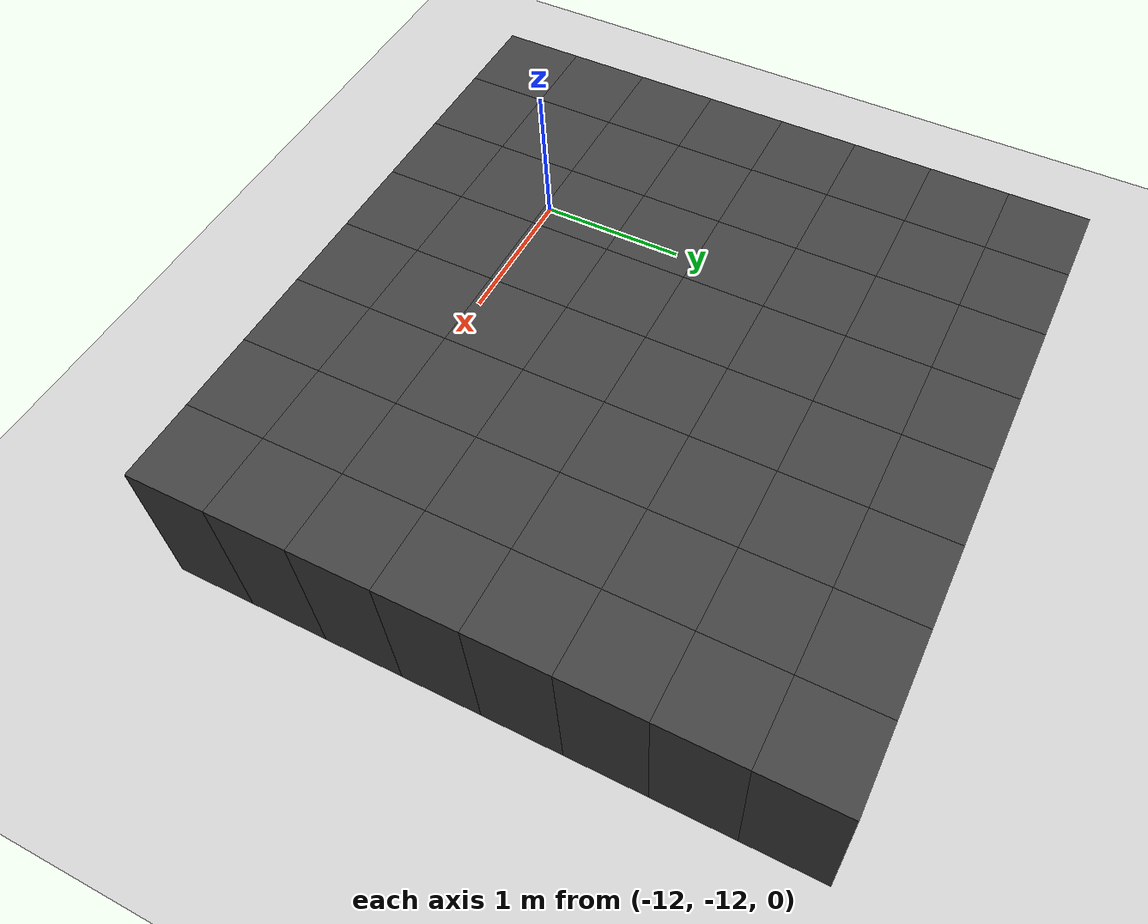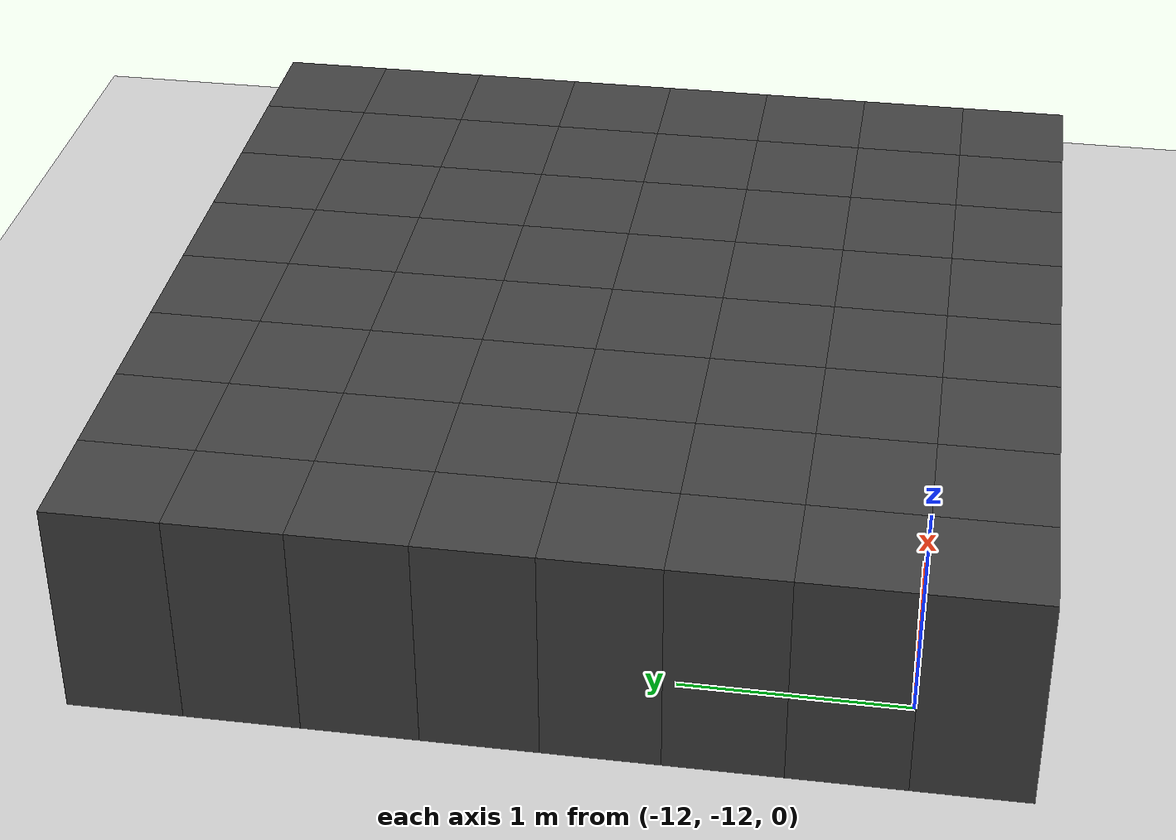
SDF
<sdf version="1.7">
 <world name="map_14735">
  <model name="ground_plane">
   <static>true</static>
   <link name="link">
    <collision name="collision">
     <geometry><plane><normal>0 0 1</normal><size>200 200</size></plane></geometry>
    </collision>
    <visual name="visual">
     <geometry><plane><normal>0 0 1</normal><size>200 200</size></plane></geometry>
     <material><ambient>0.8 0.8 0.8 1</ambient><diffuse>0.8 0.8 0.8 1</diffuse></material>
    </visual>
   </link>
  </model>
  <model name="maze_environment">
   <static>true</static>
   <link name="wall_1421">
    <pose>-12.250 -8.750 0.500 0 0 0</pose>
    <collision name="col"><geometry><box><size>0.5 0.5 1.0</size></box></geometry></collision>
    <visual name="vis">
     <geometry><box><size>0.5 0.5 1.0</size></box></geometry>
     <material><ambient>0.15 0.15 0.15 1</ambient><diffuse>0.25 0.25 0.25 1</diffuse></material>
    </visual>
   </link>
   <link name="wall_1422">
    <pose>-11.750 -8.750 0.500 0 0 0</pose>
    <collision name="col"><geometry><box><size>0.5 0.5 1.0</size></box></geometry></collision>
    <visual name="vis">
     <geometry><box><size>0.5 0.5 1.0</size></box></geometry>
     <material><ambient>0.15 0.15 0.15 1</ambient><diffuse>0.25 0.25 0.25 1</diffuse></material>
    </visual>
   </link>
   <link name="wall_1423">
    <pose>-11.250 -8.750 0.500 0 0 0</pose>
    <collision name="col"><geometry><box><size>0.5 0.5 1.0</size></box></geometry></collision>
    <visual name="vis">
     <geometry><box><size>0.5 0.5 1.0</size></box></geometry>
     <material><ambient>0.15 0.15 0.15 1</ambient><diffuse>0.25 0.25 0.25 1</diffuse></material>
    </visual>
   </link>
   <link name="wall_1424">
    <pose>-10.750 -8.750 0.500 0 0 0</pose>
    <collision name="col"><geometry><box><size>0.5 0.5 1.0</size></box></geometry></collision>
    <visual name="vis">
     <geometry><box><size>0.5 0.5 1.0</size></box></geometry>
     <material><ambient>0.15 0.15 0.15 1</ambient><diffuse>0.25 0.25 0.25 1</diffuse></material>
    </visual>
   </link>
   <link name="wall_1425">
    <pose>-10.250 -8.750 0.500 0 0 0</pose>
    <collision name="col"><geometry><box><size>0.5 0.5 1.0</size></box></geometry></collision>
    <visual name="vis">
     <geometry><box><size>0.5 0.5 1.0</size></box></geometry>
     <material><ambient>0.15 0.15 0.15 1</ambient><diffuse>0.25 0.25 0.25 1</diffuse></material>
    </visual>
   </link>
   <link name="wall_1426">
    <pose>-9.750 -8.750 0.500 0 0 0</pose>
    <collision name="col"><geometry><box><size>0.5 0.5 1.0</size></box></geometry></collision>
    <visual name="vis">
     <geometry><box><size>0.5 0.5 1.0</size></box></geometry>
     <material><ambient>0.15 0.15 0.15 1</ambient><diffuse>0.25 0.25 0.25 1</diffuse></material>
    </visual>
   </link>
   <link name="wall_1427">
    <pose>-9.250 -8.750 0.500 0 0 0</pose>
    <collision name="col"><geometry><box><size>0.5 0.5 1.0</size></box></geometry></collision>
    <visual name="vis">
     <geometry><box><size>0.5 0.5 1.0</size></box></geometry>
     <material><ambient>0.15 0.15 0.15 1</ambient><diffuse>0.25 0.25 0.25 1</diffuse></material>
    </visual>
   </link>
   <link name="wall_1428">
    <pose>-8.750 -8.750 0.500 0 0 0</pose>
    <collision name="col"><geometry><box><size>0.5 0.5 1.0</size></box></geometry></collision>
    <visual name="vis">
     <geometry><box><size>0.5 0.5 1.0</size></box></geometry>
     <material><ambient>0.15 0.15 0.15 1</ambient><diffuse>0.25 0.25 0.25 1</diffuse></material>
    </visual>
   </link>
   <link name="wall_1463">
    <pose>-12.250 -9.250 0.500 0 0 0</pose>
    <collision name="col"><geometry><box><size>0.5 0.5 1.0</size></box></geometry></collision>
    <visual name="vis">
     <geometry><box><size>0.5 0.5 1.0</size></box></geometry>
     <material><ambient>0.15 0.15 0.15 1</ambient><diffuse>0.25 0.25 0.25 1</diffuse></material>
    </visual>
   </link>
   <link name="wall_1464">
    <pose>-11.750 -9.250 0.500 0 0 0</pose>
    <collision name="col"><geometry><box><size>0.5 0.5 1.0</size></box></geometry></collision>
    <visual name="vis">
     <geometry><box><size>0.5 0.5 1.0</size></box></geometry>
     <material><ambient>0.15 0.15 0.15 1</ambient><diffuse>0.25 0.25 0.25 1</diffuse></material>
    </visual>
   </link>
   <link name="wall_1465">
    <pose>-11.250 -9.250 0.500 0 0 0</pose>
    <collision name="col"><geometry><box><size>0.5 0.5 1.0</size></box></geometry></collision>
    <visual name="vis">
     <geometry><box><size>0.5 0.5 1.0</size></box></geometry>
     <material><ambient>0.15 0.15 0.15 1</ambient><diffuse>0.25 0.25 0.25 1</diffuse></material>
    </visual>
   </link>
   <link name="wall_1466">
    <pose>-10.750 -9.250 0.500 0 0 0</pose>
    <collision name="col"><geometry><box><size>0.5 0.5 1.0</size></box></geometry></collision>
    <visual name="vis">
     <geometry><box><size>0.5 0.5 1.0</size></box></geometry>
     <material><ambient>0.15 0.15 0.15 1</ambient><diffuse>0.25 0.25 0.25 1</diffuse></material>
    </visual>
   </link>
   <link name="wall_1467">
    <pose>-10.250 -9.250 0.500 0 0 0</pose>
    <collision name="col"><geometry><box><size>0.5 0.5 1.0</size></box></geometry></collision>
    <visual name="vis">
     <geometry><box><size>0.5 0.5 1.0</size></box></geometry>
     <material><ambient>0.15 0.15 0.15 1</ambient><diffuse>0.25 0.25 0.25 1</diffuse></material>
    </visual>
   </link>
   <link name="wall_1468">
    <pose>-9.750 -9.250 0.500 0 0 0</pose>
    <collision name="col"><geometry><box><size>0.5 0.5 1.0</size></box></geometry></collision>
    <visual name="vis">
     <geometry><box><size>0.5 0.5 1.0</size></box></geometry>
     <material><ambient>0.15 0.15 0.15 1</ambient><diffuse>0.25 0.25 0.25 1</diffuse></material>
    </visual>
   </link>
   <link name="wall_1469">
    <pose>-9.250 -9.250 0.500 0 0 0</pose>
    <collision name="col"><geometry><box><size>0.5 0.5 1.0</size></box></geometry></collision>
    <visual name="vis">
     <geometry><box><size>0.5 0.5 1.0</size></box></geometry>
     <material><ambient>0.15 0.15 0.15 1</ambient><diffuse>0.25 0.25 0.25 1</diffuse></material>
    </visual>
   </link>
   <link name="wall_1470">
    <pose>-8.750 -9.250 0.500 0 0 0</pose>
    <collision name="col"><geometry><box><size>0.5 0.5 1.0</size></box></geometry></collision>
    <visual name="vis">
     <geometry><box><size>0.5 0.5 1.0</size></box></geometry>
     <material><ambient>0.15 0.15 0.15 1</ambient><diffuse>0.25 0.25 0.25 1</diffuse></material>
    </visual>
   </link>
   <link name="wall_1505">
    <pose>-12.250 -9.750 0.500 0 0 0</pose>
    <collision name="col"><geometry><box><size>0.5 0.5 1.0</size></box></geometry></collision>
    <visual name="vis">
     <geometry><box><size>0.5 0.5 1.0</size></box></geometry>
     <material><ambient>0.15 0.15 0.15 1</ambient><diffuse>0.25 0.25 0.25 1</diffuse></material>
    </visual>
   </link>
   <link name="wall_1506">
    <pose>-11.750 -9.750 0.500 0 0 0</pose>
    <collision name="col"><geometry><box><size>0.5 0.5 1.0</size></box></geometry></collision>
    <visual name="vis">
     <geometry><box><size>0.5 0.5 1.0</size></box></geometry>
     <material><ambient>0.15 0.15 0.15 1</ambient><diffuse>0.25 0.25 0.25 1</diffuse></material>
    </visual>
   </link>
   <link name="wall_1507">
    <pose>-11.250 -9.750 0.500 0 0 0</pose>
    <collision name="col"><geometry><box><size>0.5 0.5 1.0</size></box></geometry></collision>
    <visual name="vis">
     <geometry><box><size>0.5 0.5 1.0</size></box></geometry>
     <material><ambient>0.15 0.15 0.15 1</ambient><diffuse>0.25 0.25 0.25 1</diffuse></material>
    </visual>
   </link>
   <link name="wall_1508">
    <pose>-10.750 -9.750 0.500 0 0 0</pose>
    <collision name="col"><geometry><box><size>0.5 0.5 1.0</size></box></geometry></collision>
    <visual name="vis">
     <geometry><box><size>0.5 0.5 1.0</size></box></geometry>
     <material><ambient>0.15 0.15 0.15 1</ambient><diffuse>0.25 0.25 0.25 1</diffuse></material>
    </visual>
   </link>
   <link name="wall_1509">
    <pose>-10.250 -9.750 0.500 0 0 0</pose>
    <collision name="col"><geometry><box><size>0.5 0.5 1.0</size></box></geometry></collision>
    <visual name="vis">
     <geometry><box><size>0.5 0.5 1.0</size></box></geometry>
     <material><ambient>0.15 0.15 0.15 1</ambient><diffuse>0.25 0.25 0.25 1</diffuse></material>
    </visual>
   </link>
   <link name="wall_1510">
    <pose>-9.750 -9.750 0.500 0 0 0</pose>
    <collision name="col"><geometry><box><size>0.5 0.5 1.0</size></box></geometry></collision>
    <visual name="vis">
     <geometry><box><size>0.5 0.5 1.0</size></box></geometry>
     <material><ambient>0.15 0.15 0.15 1</ambient><diffuse>0.25 0.25 0.25 1</diffuse></material>
    </visual>
   </link>
   <link name="wall_1511">
    <pose>-9.250 -9.750 0.500 0 0 0</pose>
    <collision name="col"><geometry><box><size>0.5 0.5 1.0</size></box></geometry></collision>
    <visual name="vis">
     <geometry><box><size>0.5 0.5 1.0</size></box></geometry>
     <material><ambient>0.15 0.15 0.15 1</ambient><diffuse>0.25 0.25 0.25 1</diffuse></material>
    </visual>
   </link>
   <link name="wall_1512">
    <pose>-8.750 -9.750 0.500 0 0 0</pose>
    <collision name="col"><geometry><box><size>0.5 0.5 1.0</size></box></geometry></collision>
    <visual name="vis">
     <geometry><box><size>0.5 0.5 1.0</size></box></geometry>
     <material><ambient>0.15 0.15 0.15 1</ambient><diffuse>0.25 0.25 0.25 1</diffuse></material>
    </visual>
   </link>
   <link name="wall_1554">
    <pose>-12.250 -10.250 0.500 0 0 0</pose>
    <collision name="col"><geometry><box><size>0.5 0.5 1.0</size></box></geometry></collision>
    <visual name="vis">
     <geometry><box><size>0.5 0.5 1.0</size></box></geometry>
     <material><ambient>0.15 0.15 0.15 1</ambient><diffuse>0.25 0.25 0.25 1</diffuse></material>
    </visual>
   </link>
   <link name="wall_1555">
    <pose>-11.750 -10.250 0.500 0 0 0</pose>
    <collision name="col"><geometry><box><size>0.5 0.5 1.0</size></box></geometry></collision>
    <visual name="vis">
     <geometry><box><size>0.5 0.5 1.0</size></box></geometry>
     <material><ambient>0.15 0.15 0.15 1</ambient><diffuse>0.25 0.25 0.25 1</diffuse></material>
    </visual>
   </link>
   <link name="wall_1556">
    <pose>-11.250 -10.250 0.500 0 0 0</pose>
    <collision name="col"><geometry><box><size>0.5 0.5 1.0</size></box></geometry></collision>
    <visual name="vis">
     <geometry><box><size>0.5 0.5 1.0</size></box></geometry>
     <material><ambient>0.15 0.15 0.15 1</ambient><diffuse>0.25 0.25 0.25 1</diffuse></material>
    </visual>
   </link>
   <link name="wall_1557">
    <pose>-10.750 -10.250 0.500 0 0 0</pose>
    <collision name="col"><geometry><box><size>0.5 0.5 1.0</size></box></geometry></collision>
    <visual name="vis">
     <geometry><box><size>0.5 0.5 1.0</size></box></geometry>
     <material><ambient>0.15 0.15 0.15 1</ambient><diffuse>0.25 0.25 0.25 1</diffuse></material>
    </visual>
   </link>
   <link name="wall_1558">
    <pose>-10.250 -10.250 0.500 0 0 0</pose>
    <collision name="col"><geometry><box><size>0.5 0.5 1.0</size></box></geometry></collision>
    <visual name="vis">
     <geometry><box><size>0.5 0.5 1.0</size></box></geometry>
     <material><ambient>0.15 0.15 0.15 1</ambient><diffuse>0.25 0.25 0.25 1</diffuse></material>
    </visual>
   </link>
   <link name="wall_1559">
    <pose>-9.750 -10.250 0.500 0 0 0</pose>
    <collision name="col"><geometry><box><size>0.5 0.5 1.0</size></box></geometry></collision>
    <visual name="vis">
     <geometry><box><size>0.5 0.5 1.0</size></box></geometry>
     <material><ambient>0.15 0.15 0.15 1</ambient><diffuse>0.25 0.25 0.25 1</diffuse></material>
    </visual>
   </link>
   <link name="wall_1560">
    <pose>-9.250 -10.250 0.500 0 0 0</pose>
    <collision name="col"><geometry><box><size>0.5 0.5 1.0</size></box></geometry></collision>
    <visual name="vis">
     <geometry><box><size>0.5 0.5 1.0</size></box></geometry>
     <material><ambient>0.15 0.15 0.15 1</ambient><diffuse>0.25 0.25 0.25 1</diffuse></material>
    </visual>
   </link>
   <link name="wall_1561">
    <pose>-8.750 -10.250 0.500 0 0 0</pose>
    <collision name="col"><geometry><box><size>0.5 0.5 1.0</size></box></geometry></collision>
    <visual name="vis">
     <geometry><box><size>0.5 0.5 1.0</size></box></geometry>
     <material><ambient>0.15 0.15 0.15 1</ambient><diffuse>0.25 0.25 0.25 1</diffuse></material>
    </visual>
   </link>
   <link name="wall_1603">
    <pose>-12.250 -10.750 0.500 0 0 0</pose>
    <collision name="col"><geometry><box><size>0.5 0.5 1.0</size></box></geometry></collision>
    <visual name="vis">
     <geometry><box><size>0.5 0.5 1.0</size></box></geometry>
     <material><ambient>0.15 0.15 0.15 1</ambient><diffuse>0.25 0.25 0.25 1</diffuse></material>
    </visual>
   </link>
   <link name="wall_1604">
    <pose>-11.750 -10.750 0.500 0 0 0</pose>
    <collision name="col"><geometry><box><size>0.5 0.5 1.0</size></box></geometry></collision>
    <visual name="vis">
     <geometry><box><size>0.5 0.5 1.0</size></box></geometry>
     <material><ambient>0.15 0.15 0.15 1</ambient><diffuse>0.25 0.25 0.25 1</diffuse></material>
    </visual>
   </link>
   <link name="wall_1605">
    <pose>-11.250 -10.750 0.500 0 0 0</pose>
    <collision name="col"><geometry><box><size>0.5 0.5 1.0</size></box></geometry></collision>
    <visual name="vis">
     <geometry><box><size>0.5 0.5 1.0</size></box></geometry>
     <material><ambient>0.15 0.15 0.15 1</ambient><diffuse>0.25 0.25 0.25 1</diffuse></material>
    </visual>
   </link>
   <link name="wall_1606">
    <pose>-10.750 -10.750 0.500 0 0 0</pose>
    <collision name="col"><geometry><box><size>0.5 0.5 1.0</size></box></geometry></collision>
    <visual name="vis">
     <geometry><box><size>0.5 0.5 1.0</size></box></geometry>
     <material><ambient>0.15 0.15 0.15 1</ambient><diffuse>0.25 0.25 0.25 1</diffuse></material>
    </visual>
   </link>
   <link name="wall_1607">
    <pose>-10.250 -10.750 0.500 0 0 0</pose>
    <collision name="col"><geometry><box><size>0.5 0.5 1.0</size></box></geometry></collision>
    <visual name="vis">
     <geometry><box><size>0.5 0.5 1.0</size></box></geometry>
     <material><ambient>0.15 0.15 0.15 1</ambient><diffuse>0.25 0.25 0.25 1</diffuse></material>
    </visual>
   </link>
   <link name="wall_1608">
    <pose>-9.750 -10.750 0.500 0 0 0</pose>
    <collision name="col"><geometry><box><size>0.5 0.5 1.0</size></box></geometry></collision>
    <visual name="vis">
     <geometry><box><size>0.5 0.5 1.0</size></box></geometry>
     <material><ambient>0.15 0.15 0.15 1</ambient><diffuse>0.25 0.25 0.25 1</diffuse></material>
    </visual>
   </link>
   <link name="wall_1609">
    <pose>-9.250 -10.750 0.500 0 0 0</pose>
    <collision name="col"><geometry><box><size>0.5 0.5 1.0</size></box></geometry></collision>
    <visual name="vis">
     <geometry><box><size>0.5 0.5 1.0</size></box></geometry>
     <material><ambient>0.15 0.15 0.15 1</ambient><diffuse>0.25 0.25 0.25 1</diffuse></material>
    </visual>
   </link>
   <link name="wall_1610">
    <pose>-8.750 -10.750 0.500 0 0 0</pose>
    <collision name="col"><geometry><box><size>0.5 0.5 1.0</size></box></geometry></collision>
    <visual name="vis">
     <geometry><box><size>0.5 0.5 1.0</size></box></geometry>
     <material><ambient>0.15 0.15 0.15 1</ambient><diffuse>0.25 0.25 0.25 1</diffuse></material>
    </visual>
   </link>
   <link name="wall_1649">
    <pose>-12.250 -11.250 0.500 0 0 0</pose>
    <collision name="col"><geometry><box><size>0.5 0.5 1.0</size></box></geometry></collision>
    <visual name="vis">
     <geometry><box><size>0.5 0.5 1.0</size></box></geometry>
     <material><ambient>0.15 0.15 0.15 1</ambient><diffuse>0.25 0.25 0.25 1</diffuse></material>
    </visual>
   </link>
   <link name="wall_1650">
    <pose>-11.750 -11.250 0.500 0 0 0</pose>
    <collision name="col"><geometry><box><size>0.5 0.5 1.0</size></box></geometry></collision>
    <visual name="vis">
     <geometry><box><size>0.5 0.5 1.0</size></box></geometry>
     <material><ambient>0.15 0.15 0.15 1</ambient><diffuse>0.25 0.25 0.25 1</diffuse></material>
    </visual>
   </link>
   <link name="wall_1651">
    <pose>-11.250 -11.250 0.500 0 0 0</pose>
    <collision name="col"><geometry><box><size>0.5 0.5 1.0</size></box></geometry></collision>
    <visual name="vis">
     <geometry><box><size>0.5 0.5 1.0</size></box></geometry>
     <material><ambient>0.15 0.15 0.15 1</ambient><diffuse>0.25 0.25 0.25 1</diffuse></material>
    </visual>
   </link>
   <link name="wall_1652">
    <pose>-10.750 -11.250 0.500 0 0 0</pose>
    <collision name="col"><geometry><box><size>0.5 0.5 1.0</size></box></geometry></collision>
    <visual name="vis">
     <geometry><box><size>0.5 0.5 1.0</size></box></geometry>
     <material><ambient>0.15 0.15 0.15 1</ambient><diffuse>0.25 0.25 0.25 1</diffuse></material>
    </visual>
   </link>
   <link name="wall_1653">
    <pose>-10.250 -11.250 0.500 0 0 0</pose>
    <collision name="col"><geometry><box><size>0.5 0.5 1.0</size></box></geometry></collision>
    <visual name="vis">
     <geometry><box><size>0.5 0.5 1.0</size></box></geometry>
     <material><ambient>0.15 0.15 0.15 1</ambient><diffuse>0.25 0.25 0.25 1</diffuse></material>
    </visual>
   </link>
   <link name="wall_1654">
    <pose>-9.750 -11.250 0.500 0 0 0</pose>
    <collision name="col"><geometry><box><size>0.5 0.5 1.0</size></box></geometry></collision>
    <visual name="vis">
     <geometry><box><size>0.5 0.5 1.0</size></box></geometry>
     <material><ambient>0.15 0.15 0.15 1</ambient><diffuse>0.25 0.25 0.25 1</diffuse></material>
    </visual>
   </link>
   <link name="wall_1655">
    <pose>-9.250 -11.250 0.500 0 0 0</pose>
    <collision name="col"><geometry><box><size>0.5 0.5 1.0</size></box></geometry></collision>
    <visual name="vis">
     <geometry><box><size>0.5 0.5 1.0</size></box></geometry>
     <material><ambient>0.15 0.15 0.15 1</ambient><diffuse>0.25 0.25 0.25 1</diffuse></material>
    </visual>
   </link>
   <link name="wall_1656">
    <pose>-8.750 -11.250 0.500 0 0 0</pose>
    <collision name="col"><geometry><box><size>0.5 0.5 1.0</size></box></geometry></collision>
    <visual name="vis">
     <geometry><box><size>0.5 0.5 1.0</size></box></geometry>
     <material><ambient>0.15 0.15 0.15 1</ambient><diffuse>0.25 0.25 0.25 1</diffuse></material>
    </visual>
   </link>
   <link name="wall_1694">
    <pose>-12.250 -11.750 0.500 0 0 0</pose>
    <collision name="col"><geometry><box><size>0.5 0.5 1.0</size></box></geometry></collision>
    <visual name="vis">
     <geometry><box><size>0.5 0.5 1.0</size></box></geometry>
     <material><ambient>0.15 0.15 0.15 1</ambient><diffuse>0.25 0.25 0.25 1</diffuse></material>
    </visual>
   </link>
   <link name="wall_1695">
    <pose>-11.750 -11.750 0.500 0 0 0</pose>
    <collision name="col"><geometry><box><size>0.5 0.5 1.0</size></box></geometry></collision>
    <visual name="vis">
     <geometry><box><size>0.5 0.5 1.0</size></box></geometry>
     <material><ambient>0.15 0.15 0.15 1</ambient><diffuse>0.25 0.25 0.25 1</diffuse></material>
    </visual>
   </link>
   <link name="wall_1696">
    <pose>-11.250 -11.750 0.500 0 0 0</pose>
    <collision name="col"><geometry><box><size>0.5 0.5 1.0</size></box></geometry></collision>
    <visual name="vis">
     <geometry><box><size>0.5 0.5 1.0</size></box></geometry>
     <material><ambient>0.15 0.15 0.15 1</ambient><diffuse>0.25 0.25 0.25 1</diffuse></material>
    </visual>
   </link>
   <link name="wall_1697">
    <pose>-10.750 -11.750 0.500 0 0 0</pose>
    <collision name="col"><geometry><box><size>0.5 0.5 1.0</size></box></geometry></collision>
    <visual name="vis">
     <geometry><box><size>0.5 0.5 1.0</size></box></geometry>
     <material><ambient>0.15 0.15 0.15 1</ambient><diffuse>0.25 0.25 0.25 1</diffuse></material>
    </visual>
   </link>
   <link name="wall_1698">
    <pose>-10.250 -11.750 0.500 0 0 0</pose>
    <collision name="col"><geometry><box><size>0.5 0.5 1.0</size></box></geometry></collision>
    <visual name="vis">
     <geometry><box><size>0.5 0.5 1.0</size></box></geometry>
     <material><ambient>0.15 0.15 0.15 1</ambient><diffuse>0.25 0.25 0.25 1</diffuse></material>
    </visual>
   </link>
   <link name="wall_1699">
    <pose>-9.750 -11.750 0.500 0 0 0</pose>
    <collision name="col"><geometry><box><size>0.5 0.5 1.0</size></box></geometry></collision>
    <visual name="vis">
     <geometry><box><size>0.5 0.5 1.0</size></box></geometry>
     <material><ambient>0.15 0.15 0.15 1</ambient><diffuse>0.25 0.25 0.25 1</diffuse></material>
    </visual>
   </link>
   <link name="wall_1700">
    <pose>-9.250 -11.750 0.500 0 0 0</pose>
    <collision name="col"><geometry><box><size>0.5 0.5 1.0</size></box></geometry></collision>
    <visual name="vis">
     <geometry><box><size>0.5 0.5 1.0</size></box></geometry>
     <material><ambient>0.15 0.15 0.15 1</ambient><diffuse>0.25 0.25 0.25 1</diffuse></material>
    </visual>
   </link>
   <link name="wall_1701">
    <pose>-8.750 -11.750 0.500 0 0 0</pose>
    <collision name="col"><geometry><box><size>0.5 0.5 1.0</size></box></geometry></collision>
    <visual name="vis">
     <geometry><box><size>0.5 0.5 1.0</size></box></geometry>
     <material><ambient>0.15 0.15 0.15 1</ambient><diffuse>0.25 0.25 0.25 1</diffuse></material>
    </visual>
   </link>
   <link name="wall_1741">
    <pose>-12.250 -12.250 0.500 0 0 0</pose>
    <collision name="col"><geometry><box><size>0.5 0.5 1.0</size></box></geometry></collision>
    <visual name="vis">
     <geometry><box><size>0.5 0.5 1.0</size></box></geometry>
     <material><ambient>0.15 0.15 0.15 1</ambient><diffuse>0.25 0.25 0.25 1</diffuse></material>
    </visual>
   </link>
   <link name="wall_1742">
    <pose>-11.750 -12.250 0.500 0 0 0</pose>
    <collision name="col"><geometry><box><size>0.5 0.5 1.0</size></box></geometry></collision>
    <visual name="vis">
     <geometry><box><size>0.5 0.5 1.0</size></box></geometry>
     <material><ambient>0.15 0.15 0.15 1</ambient><diffuse>0.25 0.25 0.25 1</diffuse></material>
    </visual>
   </link>
   <link name="wall_1743">
    <pose>-11.250 -12.250 0.500 0 0 0</pose>
    <collision name="col"><geometry><box><size>0.5 0.5 1.0</size></box></geometry></collision>
    <visual name="vis">
     <geometry><box><size>0.5 0.5 1.0</size></box></geometry>
     <material><ambient>0.15 0.15 0.15 1</ambient><diffuse>0.25 0.25 0.25 1</diffuse></material>
    </visual>
   </link>
   <link name="wall_1744">
    <pose>-10.750 -12.250 0.500 0 0 0</pose>
    <collision name="col"><geometry><box><size>0.5 0.5 1.0</size></box></geometry></collision>
    <visual name="vis">
     <geometry><box><size>0.5 0.5 1.0</size></box></geometry>
     <material><ambient>0.15 0.15 0.15 1</ambient><diffuse>0.25 0.25 0.25 1</diffuse></material>
    </visual>
   </link>
   <link name="wall_1745">
    <pose>-10.250 -12.250 0.500 0 0 0</pose>
    <collision name="col"><geometry><box><size>0.5 0.5 1.0</size></box></geometry></collision>
    <visual name="vis">
     <geometry><box><size>0.5 0.5 1.0</size></box></geometry>
     <material><ambient>0.15 0.15 0.15 1</ambient><diffuse>0.25 0.25 0.25 1</diffuse></material>
    </visual>
   </link>
   <link name="wall_1746">
    <pose>-9.750 -12.250 0.500 0 0 0</pose>
    <collision name="col"><geometry><box><size>0.5 0.5 1.0</size></box></geometry></collision>
    <visual name="vis">
     <geometry><box><size>0.5 0.5 1.0</size></box></geometry>
     <material><ambient>0.15 0.15 0.15 1</ambient><diffuse>0.25 0.25 0.25 1</diffuse></material>
    </visual>
   </link>
   <link name="wall_1747">
    <pose>-9.250 -12.250 0.500 0 0 0</pose>
    <collision name="col"><geometry><box><size>0.5 0.5 1.0</size></box></geometry></collision>
    <visual name="vis">
     <geometry><box><size>0.5 0.5 1.0</size></box></geometry>
     <material><ambient>0.15 0.15 0.15 1</ambient><diffuse>0.25 0.25 0.25 1</diffuse></material>
    </visual>
   </link>
   <link name="wall_1748">
    <pose>-8.750 -12.250 0.500 0 0 0</pose>
    <collision name="col"><geometry><box><size>0.5 0.5 1.0</size></box></geometry></collision>
    <visual name="vis">
     <geometry><box><size>0.5 0.5 1.0</size></box></geometry>
     <material><ambient>0.15 0.15 0.15 1</ambient><diffuse>0.25 0.25 0.25 1</diffuse></material>
    </visual>
   </link>
  </model>
 </world>
</sdf>
